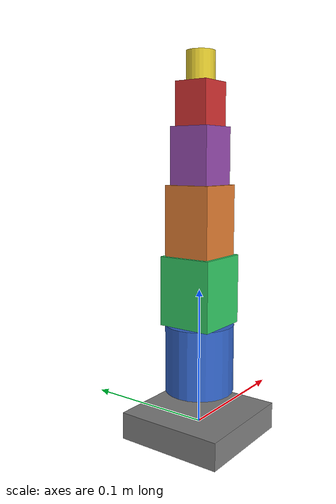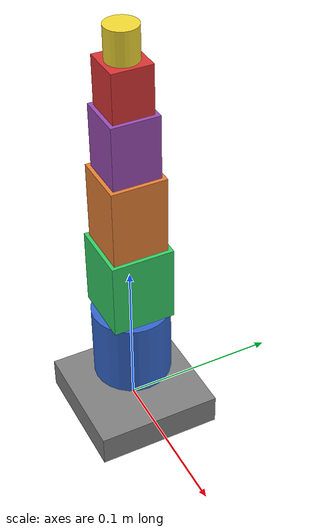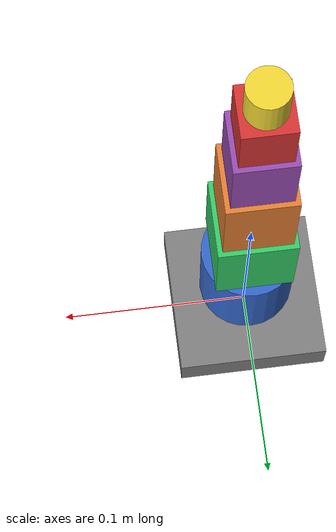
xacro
<?xml version="1.0"?>
<robot name="moveo" xmlns:xacro="http://ros.org/wiki/xacro">
  <!-- 5-DOF Moveo arm. Dual-motor joint2 handled in hardware. Joint6 unused (aux-wires). -->

  <!-- Base link (assumed fixed) -->
  <link name="base_link">
    <inertial>
      <origin xyz="0 0 0" rpy="0 0 0"/>
      <mass value="1.0"/>
      <inertia ixx="0.01" ixy="0" ixz="0" iyy="0.01" iyz="0" izz="0.01"/>
    </inertial>
    <visual>
      <origin xyz="0 0 0" rpy="0 0 0"/>
      <geometry><box size="0.08 0.08 0.02"/></geometry>
      <material name="grey"><color rgba="0.5 0.5 0.5 1"/></material>
    </visual>
    <collision>
      <origin xyz="0 0 0" rpy="0 0 0"/>
      <geometry><box size="0.08 0.08 0.02"/></geometry>
    </collision>
  </link>

  <!-- Link1 -->
  <link name="link1">
    <inertial>
      <origin xyz="0 0 0.025" rpy="0 0 0"/>
      <mass value="0.18"/>
      <inertia ixx="0.00025" ixy="0" ixz="0" iyy="0.00022" iyz="0" izz="0.00030"/>
    </inertial>
    <visual>
      <origin xyz="0 0 0.025" rpy="0 0 0"/>
      <geometry><cylinder radius="0.025" length="0.05"/></geometry>
      <material name="blue"><color rgba="0.2 0.4 0.8 1"/></material>
    </visual>
    <collision>
      <origin xyz="0 0 0.025" rpy="0 0 0"/>
      <!-- Slightly shorter collision length (0.048 vs 0.05) to create a 1mm clearance to adjacent link and prevent constant contact reports. -->
      <geometry><cylinder radius="0.025" length="0.048"/></geometry>
    </collision>
  </link>
  <joint name="joint1" type="revolute">
    <parent link="base_link"/>
    <child link="link1"/>
    <origin xyz="0 0 0.025" rpy="0 0 0"/>
    <axis xyz="0 0 1"/>
    <!-- Calibrated: ±82° (±1.4312 rad) | gear_ratio: 100:10 | endstop: 82° -->
    <limit effort="5" velocity="8.7266" lower="-1.4312" upper="1.4312"/>
    <dynamics damping="0.1" friction="0.0"/>
  </joint>

  <!-- Link2 -->
  <link name="link2">
    <inertial>
      <origin xyz="0 0 0.025" rpy="0 0 0"/>
      <mass value="0.20"/>
      <inertia ixx="0.00030" ixy="0" ixz="0" iyy="0.00028" iyz="0" izz="0.00035"/>
    </inertial>
    <visual>
      <origin xyz="0 0 0.025" rpy="0 0 0"/>
      <geometry><box size="0.04 0.04 0.05"/></geometry>
      <material name="green"><color rgba="0.2 0.8 0.4 1"/></material>
    </visual>
    <collision>
      <origin xyz="0 0 0.025" rpy="0 0 0"/>
      <!-- Shrink collision length to 0.048 for clearance -->
      <geometry><box size="0.04 0.04 0.048"/></geometry>
    </collision>
  </link>
  <joint name="joint2" type="revolute">
    <parent link="link1"/>
    <child link="link2"/>
    <origin xyz="0 0 0.05" rpy="0 0 0"/>
    <axis xyz="0 1 0"/>
    <!-- Calibrated: -110° to +120° (-1.9199 to 2.0944 rad) | gear_ratio: 77:14 | endstop: 115.3° | DUAL MOTOR -->
    <limit effort="5" velocity="8.7266" lower="-1.9199" upper="2.0944"/>
    <dynamics damping="0.1" friction="0.0"/>
  </joint>

  <!-- Link3 -->
  <link name="link3">
    <inertial>
      <origin xyz="0 0 0.025" rpy="0 0 0"/>
      <mass value="0.16"/>
      <inertia ixx="0.00020" ixy="0" ixz="0" iyy="0.00018" iyz="0" izz="0.00025"/>
    </inertial>
    <visual>
      <origin xyz="0 0 0.025" rpy="0 0 0"/>
      <geometry><box size="0.035 0.035 0.05"/></geometry>
      <material name="orange"><color rgba="0.9 0.5 0.2 1"/></material>
    </visual>
    <collision>
      <origin xyz="0 0 0.025" rpy="0 0 0"/>
      <!-- Clearance adjusted -->
      <geometry><box size="0.035 0.035 0.048"/></geometry>
    </collision>
  </link>
  <joint name="joint3" type="revolute">
    <parent link="link2"/>
    <child link="link3"/>
    <origin xyz="0 0 0.05" rpy="0 0 0"/>
    <axis xyz="0 1 0"/>
    <!-- Calibrated: -90° to +115° (-1.5708 to 2.0071 rad) | gear_ratio: 600:7 | endstop: 115° -->
    <limit effort="5" velocity="8.7266" lower="-1.5708" upper="2.0071"/>
    <dynamics damping="0.1" friction="0.0"/>
  </joint>

  <!-- Link4 -->
  <link name="link4">
    <inertial>
      <origin xyz="0 0 0.02" rpy="0 0 0"/>
      <mass value="0.12"/>
      <inertia ixx="0.00012" ixy="0" ixz="0" iyy="0.00010" iyz="0" izz="0.00015"/>
    </inertial>
    <visual>
      <origin xyz="0 0 0.02" rpy="0 0 0"/>
      <geometry><box size="0.03 0.03 0.04"/></geometry>
      <material name="purple"><color rgba="0.6 0.3 0.7 1"/></material>
    </visual>
    <collision>
      <origin xyz="0 0 0.02" rpy="0 0 0"/>
      <!-- Clearance adjusted -->
      <geometry><box size="0.03 0.03 0.038"/></geometry>
    </collision>
  </link>
  <joint name="joint4" type="revolute">
    <parent link="link3"/>
    <child link="link4"/>
    <!-- Raised joint4 origin from 0.04 -> 0.05 to remove overlap between link3 (0–0.05 span) and link4 (0–0.04 span relative to its own frame). -->
    <origin xyz="0 0 0.05" rpy="0 0 0"/>
    <axis xyz="1 0 0"/>
    <!-- Calibrated: ±180° (±3.1416 rad) | gear_ratio: 5.16:1 -->
    <limit effort="5" velocity="8.7266" lower="-3.1416" upper="3.1416"/>
    <dynamics damping="0.1" friction="0.0"/>
  </joint>

  <!-- Link5 -->
  <link name="link5">
    <inertial>
      <origin xyz="0 0 0.015" rpy="0 0 0"/>
      <mass value="0.10"/>
      <inertia ixx="0.00009" ixy="0" ixz="0" iyy="0.00008" iyz="0" izz="0.00011"/>
    </inertial>
    <visual>
      <origin xyz="0 0 0.015" rpy="0 0 0"/>
      <geometry><box size="0.025 0.025 0.03"/></geometry>
      <material name="red"><color rgba="0.85 0.2 0.2 1"/></material>
    </visual>
    <collision>
      <origin xyz="0 0 0.015" rpy="0 0 0"/>
      <!-- Clearance adjusted -->
      <geometry><box size="0.025 0.025 0.028"/></geometry>
    </collision>
  </link>
  <joint name="joint5" type="revolute">
    <parent link="link4"/>
    <child link="link5"/>
    <!-- Raised joint5 origin from 0.03 -> 0.04 to create ~2mm clearance between link4 top (≈0.039) and link5 bottom (≈0.041). -->
    <origin xyz="0 0 0.04" rpy="0 0 0"/>
    <axis xyz="0 0 1"/>
    <!-- Calibrated: -90° to +85° (-1.5708 to 1.4835 rad) | gear_ratio: 45:2 | endstop: 85° -->
    <limit effort="5" velocity="8.7266" lower="-1.5708" upper="1.4835"/>
    <dynamics damping="0.1" friction="0.0"/>
  </joint>

  <!-- End effector link (5-DOF configuration, joint6 removed/aux-wires) -->
  <link name="end_effector">
    <inertial>
      <origin xyz="0 0 0.01" rpy="0 0 0"/>
      <mass value="0.05"/>
      <inertia ixx="0.00003" ixy="0" ixz="0" iyy="0.00003" iyz="0" izz="0.00004"/>
    </inertial>
    <visual>
      <origin xyz="0 0 0.01" rpy="0 0 0"/>
      <geometry><cylinder radius="0.01" length="0.02"/></geometry>
      <material name="yellow"><color rgba="0.95 0.85 0.2 1"/></material>
    </visual>
    <collision>
      <origin xyz="0 0 0.01" rpy="0 0 0"/>
      <geometry><cylinder radius="0.01" length="0.018"/></geometry>
    </collision>
  </link>
  <joint name="end_effector_joint" type="fixed">
    <parent link="link5"/>
    <child link="end_effector"/>
    <origin xyz="0 0 0.03" rpy="0 0 0"/>
  </joint>

</robot>
